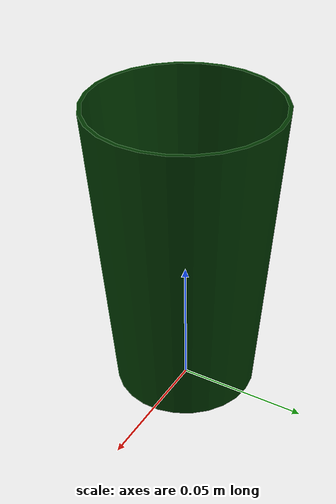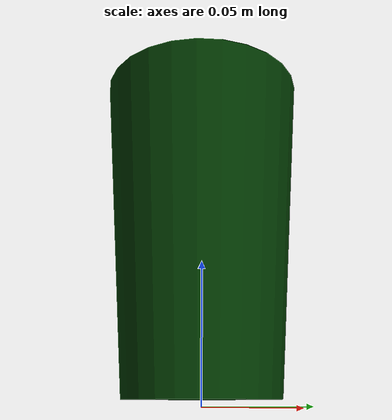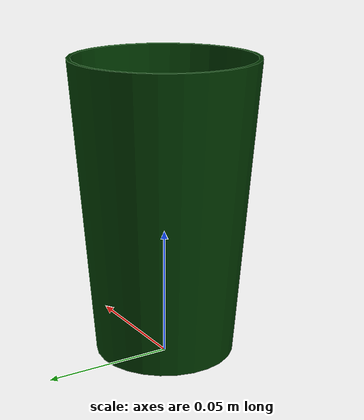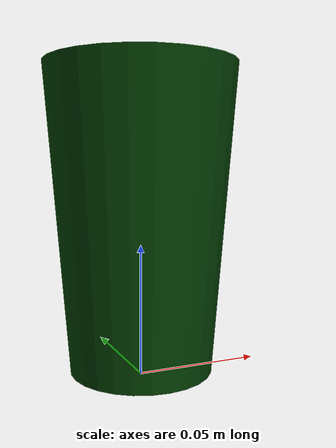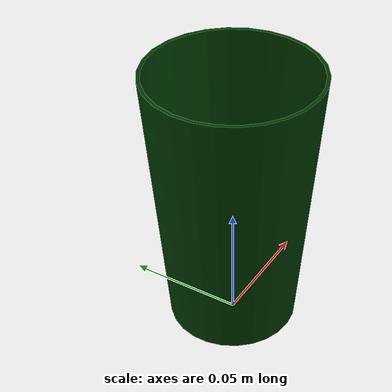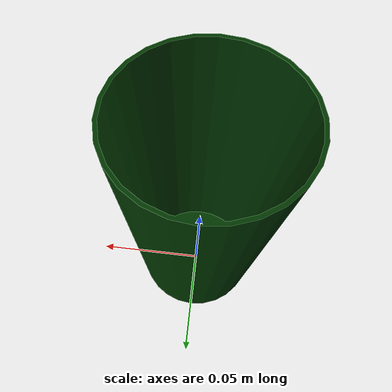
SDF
<?xml version='1.0'?>
<sdf version="1.4">
  <model name="balise_green">
    <pose>0 0 0 0 0 0</pose>
    <static>true</static>

    <link name="balise">
              <inertial>
                <mass>0.1</mass>
                <inertia> <!-- inertias are tricky to compute -->
                  <!-- http://gazebosim.org/tutorials?tut=inertia&cat=build_robot -->
                  <ixx>0.083</ixx>       <!-- for a box: ixx = 0.083 * mass * (y*y + z*z) -->
                  <ixy>0.0</ixy>         <!-- for a box: ixy = 0 -->
                  <ixz>0.0</ixz>         <!-- for a box: ixz = 0 -->
                  <iyy>0.083</iyy>       <!-- for a box: iyy = 0.083 * mass * (x*x + z*z) -->
                  <iyz>0.0</iyz>         <!-- for a box: iyz = 0 -->
                  <izz>0.083</izz>       <!-- for a box: izz = 0.083 * mass * (x*x + y*y) -->
                </inertia>
              </inertial>

              <collision name="balise_collision">
                <pose>0 0 0.06 0 0 0</pose>
                <geometry>
                   <mesh>
                        <uri>model://balise_green/meshes/balise_green.dae</uri>
                        <scale>1 1 1 </scale>
                   </mesh>
                </geometry>
              </collision>

              <visual name="balise_visual">
               <pose>0 0 0.06 0 0 0</pose>
                <geometry>
                  <mesh>
                        <uri>model://balise_green/meshes/balise_green.dae</uri>
                        <scale>1 1 1 </scale>
                   </mesh>
                </geometry>
              </visual>

    </link>

  </model>
</sdf>
